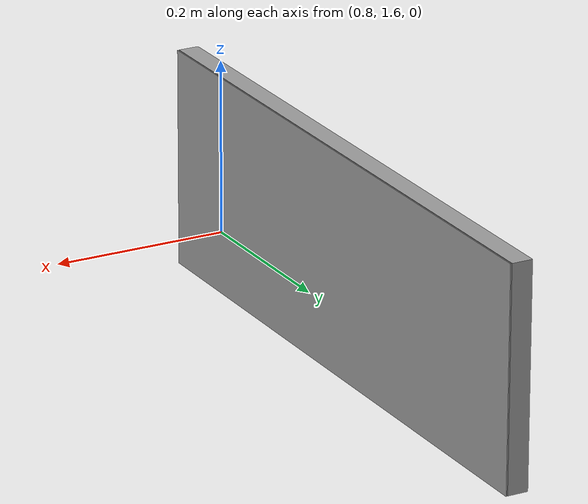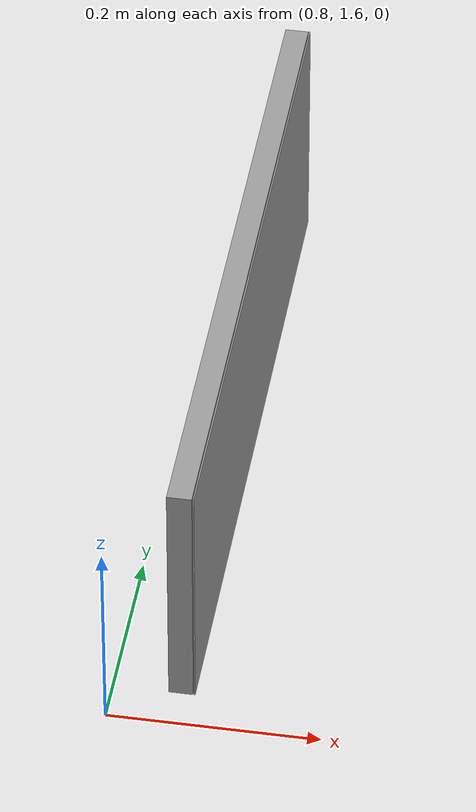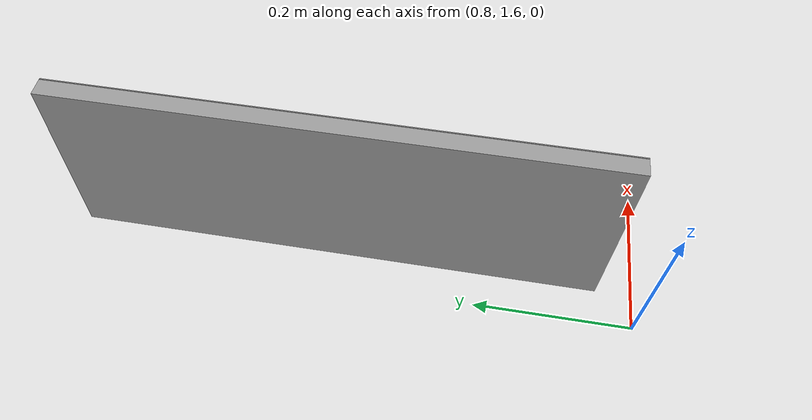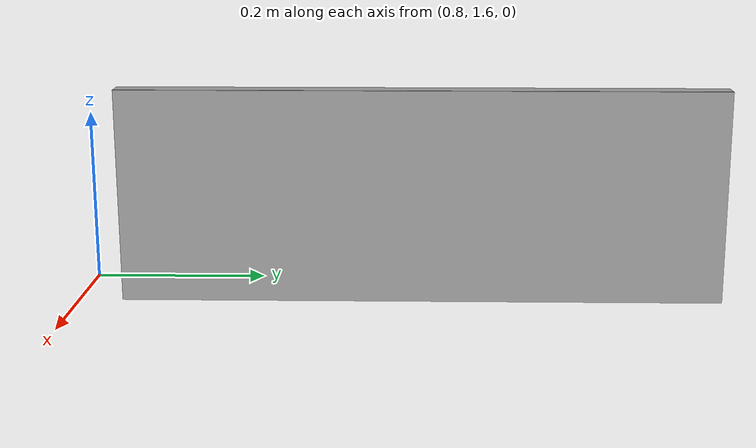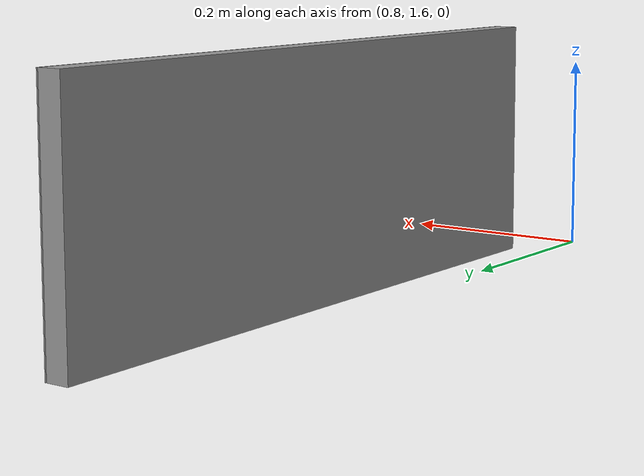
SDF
<?xml version='1.0'?>
<sdf version='1.7'>
  <model name='6'>
    <static>true</static>

    <pose>0.862399 1.990154 0.116555 0 0 0</pose>

    <link name='link_4'>
      <pose>0 0 0 0 0 0</pose>

      <visual name='visual'>
        <geometry>
          <box>
            <size>0.022928 0.691481 0.245119</size>
          </box>
        </geometry>
        <material>
          <script>
            <uri>file://media/materials/scripts/gazebo.material</uri>
            <name>Gazebo/Grey</name>
          </script>
        </material>
      </visual>

      <visual name='signboard_visual'>
        <pose>0.013 0 0 0 0 0</pose>
        <geometry>
          <box>
            <size>0.001 0.691481 0.245119</size>
          </box>
        </geometry>
        <material>
          <script>
            <uri>model://6/materials/scripts</uri>
            <uri>model://6/materials/textures</uri>
            <name>Model_6/Texture</name>
          </script>
        </material>
      </visual>

    </link>
    <allow_auto_disable>1</allow_auto_disable>
  </model>
</sdf>
